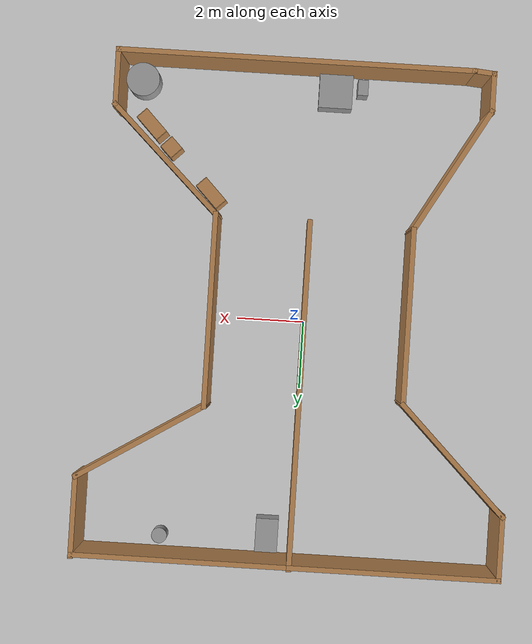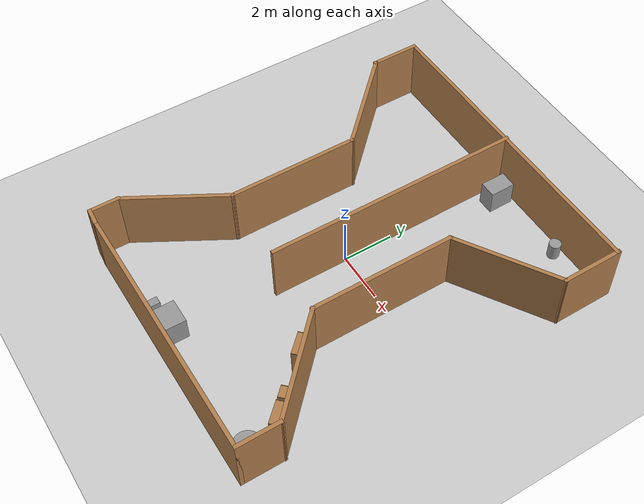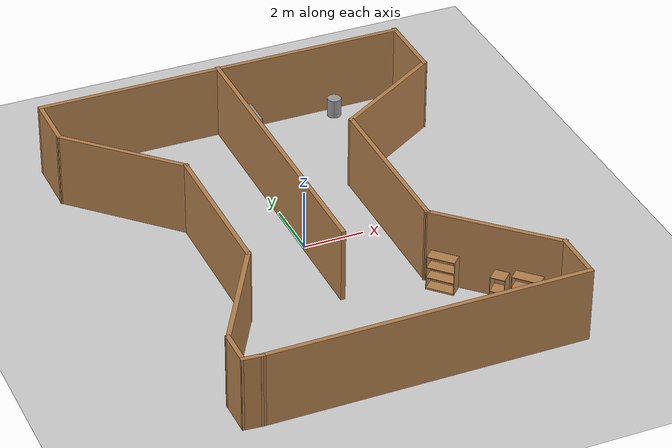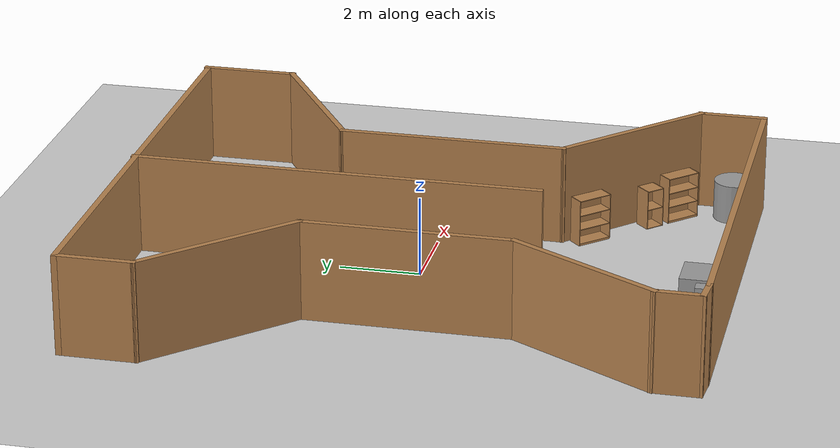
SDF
<sdf version="1.7">
 <world name="default">
  <light name="sun" type="directional">
   <pose>0 0 10 0 -0 0</pose>
   <diffuse>0.8 0.8 0.8 1</diffuse>
   <specular>0.2 0.2 0.2 1</specular>
   <attenuation>
    <range>1000</range>
    <constant>0.9</constant>
    <linear>0.01</linear>
    <quadratic>0.001</quadratic>
   </attenuation>
   <direction>-0.5 0.1 -0.9</direction>
   <spot><inner_angle>0</inner_angle><outer_angle>0</outer_angle><falloff>0</falloff></spot>
  </light>
  <model name="ground_plane">
   <static>1</static>
   <link name="link">
    <collision name="collision">
     <geometry><plane><normal>0 0 1</normal><size>100 100</size></plane></geometry>
     <surface><friction><ode><mu>100</mu><mu2>50</mu2></ode></friction></surface>
    </collision>
    <visual name="visual">
     <cast_shadows>0</cast_shadows>
     <geometry><plane><normal>0 0 1</normal><size>100 100</size></plane></geometry>
     <material>
      <script><uri>file://media/materials/scripts/gazebo.material</uri><name>Gazebo/Grey</name></script>
     </material>
    </visual>
   </link>
  </model>
  <gravity>0 0 -9.8</gravity>
  <magnetic_field>6e-06 2.3e-05 -4.2e-05</magnetic_field>
  <atmosphere type="adiabatic"/>
  <physics type="ode">
   <max_step_size>0.001</max_step_size>
   <real_time_factor>1</real_time_factor>
   <real_time_update_rate>1000</real_time_update_rate>
  </physics>
  <scene><ambient>0.4 0.4 0.4 1</ambient><background>0.7 0.7 0.7 1</background><shadows>1</shadows></scene>
  <spherical_coordinates>
   <surface_model>EARTH_WGS84</surface_model>
   <latitude_deg>0</latitude_deg>
   <longitude_deg>0</longitude_deg>
   <elevation>0</elevation>
   <heading_deg>0</heading_deg>
  </spherical_coordinates>
  <model name="corredores_ampulheta2">
   <pose>0.11555 -0.215376 0 0 -0 0</pose>
   <link name="Wall_10">
    <collision name="Wall_10_Collision">
     <geometry><box><size>5.75 0.15 2.5</size></box></geometry>
     <pose>0 0 1.25 0 -0 0</pose>
    </collision>
    <visual name="Wall_10_Visual">
     <pose>0 0 1.25 0 -0 0</pose>
     <geometry><box><size>5.75 0.15 2.5</size></box></geometry>
     <material>
      <script><uri>file://media/materials/scripts/gazebo.material</uri><name>Gazebo/Wood</name></script>
      <ambient>1 1 1 1</ambient>
     </material>
     <meta><layer>0</layer></meta>
    </visual>
    <pose>2.62636 0.019691 0 0 -0 -1.5708</pose>
   </link>
   <link name="Wall_11">
    <collision name="Wall_11_Collision">
     <geometry><box><size>4.46393 0.15 2.5</size></box></geometry>
     <pose>0 0 1.25 0 -0 0</pose>
    </collision>
    <visual name="Wall_11_Visual">
     <pose>0 0 1.25 0 -0 0</pose>
     <geometry><box><size>4.46393 0.15 2.5</size></box></geometry>
     <material>
      <script><uri>file://media/materials/scripts/gazebo.material</uri><name>Gazebo/Wood</name></script>
      <ambient>1 1 1 1</ambient>
     </material>
     <meta><layer>0</layer></meta>
    </visual>
    <pose>4.17636 -4.28031 0 0 -0 -0.769006</pose>
   </link>
   <link name="Wall_13">
    <collision name="Wall_13_Collision">
     <geometry><box><size>1.75 0.15 2.5</size></box></geometry>
     <pose>0 0 1.25 0 -0 0</pose>
    </collision>
    <visual name="Wall_13_Visual">
     <pose>0 0 1.25 0 -0 0</pose>
     <geometry><box><size>1.75 0.15 2.5</size></box></geometry>
     <material>
      <script><uri>file://media/materials/scripts/gazebo.material</uri><name>Gazebo/Wood</name></script>
      <ambient>1 1 1 1</ambient>
     </material>
     <meta><layer>0</layer></meta>
    </visual>
    <pose>5.72636 -6.58031 0 0 -0 -1.5708</pose>
   </link>
   <link name="Wall_14">
    <collision name="Wall_14_Collision">
     <geometry><box><size>10.5 0.15 2.5</size></box></geometry>
     <pose>0 0 1.25 0 -0 0</pose>
    </collision>
    <visual name="Wall_14_Visual">
     <pose>0 0 1.25 0 -0 0</pose>
     <geometry><box><size>10.5 0.15 2.5</size></box></geometry>
     <material>
      <script><uri>file://media/materials/scripts/gazebo.material</uri><name>Gazebo/Wood</name></script>
      <ambient>1 1 1 1</ambient>
     </material>
     <meta><layer>0</layer></meta>
    </visual>
    <pose>0.551358 -7.38031 0 0 -0 3.14159</pose>
   </link>
   <link name="Wall_16">
    <collision name="Wall_16_Collision">
     <geometry><box><size>6.25 0.15 2.5</size></box></geometry>
     <pose>0 0 1.25 0 -0 0</pose>
    </collision>
    <visual name="Wall_16_Visual">
     <pose>0 0 1.25 0 -0 0</pose>
     <geometry><box><size>6.25 0.15 2.5</size></box></geometry>
     <material>
      <script><uri>file://media/materials/scripts/gazebo.material</uri><name>Gazebo/Wood</name></script>
      <ambient>1 1 1 1</ambient>
     </material>
     <meta><layer>0</layer></meta>
    </visual>
    <pose>-3.17364 7.34605 0 0 -0 3.14159</pose>
   </link>
   <link name="Wall_17">
    <collision name="Wall_17_Collision">
     <geometry><box><size>2 0.15 2.5</size></box></geometry>
     <pose>0 0 1.25 0 -0 0</pose>
    </collision>
    <visual name="Wall_17_Visual">
     <pose>0 0 1.25 0 -0 0</pose>
     <geometry><box><size>2 0.15 2.5</size></box></geometry>
     <material>
      <script><uri>file://media/materials/scripts/gazebo.material</uri><name>Gazebo/Wood</name></script>
      <ambient>1 1 1 1</ambient>
     </material>
     <meta><layer>0</layer></meta>
    </visual>
    <pose>-6.22364 6.42105 0 0 -0 -1.5708</pose>
   </link>
   <link name="Wall_18">
    <collision name="Wall_18_Collision">
     <geometry><box><size>4.5 0.15 2.5</size></box></geometry>
     <pose>0 0 1.25 0 -0 0</pose>
    </collision>
    <visual name="Wall_18_Visual">
     <pose>0 0 1.25 0 -0 0</pose>
     <geometry><box><size>4.5 0.15 2.5</size></box></geometry>
     <material>
      <script><uri>file://media/materials/scripts/gazebo.material</uri><name>Gazebo/Wood</name></script>
      <ambient>1 1 1 1</ambient>
     </material>
     <meta><layer>0</layer></meta>
    </visual>
    <pose>-4.68569 3.95809 0 0 -0 -0.785398</pose>
   </link>
   <link name="Wall_19">
    <collision name="Wall_19_Collision">
     <geometry><box><size>5.25 0.15 2.5</size></box></geometry>
     <pose>0 0 1.25 0 -0 0</pose>
    </collision>
    <visual name="Wall_19_Visual">
     <pose>0 0 1.25 0 -0 0</pose>
     <geometry><box><size>5.25 0.15 2.5</size></box></geometry>
     <material>
      <script><uri>file://media/materials/scripts/gazebo.material</uri><name>Gazebo/Wood</name></script>
      <ambient>1 1 1 1</ambient>
     </material>
     <meta><layer>0</layer></meta>
    </visual>
    <pose>-3.14773 -0.129868 0 0 -0 -1.5708</pose>
   </link>
   <link name="Wall_20">
    <collision name="Wall_20_Collision">
     <geometry><box><size>4.25 0.15 2.5</size></box></geometry>
     <pose>0 0 1.25 0 -0 0</pose>
    </collision>
    <visual name="Wall_20_Visual">
     <pose>0 0 1.25 0 -0 0</pose>
     <geometry><box><size>4.25 0.15 2.5</size></box></geometry>
     <material>
      <script><uri>file://media/materials/scripts/gazebo.material</uri><name>Gazebo/Wood</name></script>
      <ambient>1 1 1 1</ambient>
     </material>
     <meta><layer>0</layer></meta>
    </visual>
    <pose>-4.17273 -4.45522 0 0 -0 -2.0944</pose>
   </link>
   <link name="Wall_21">
    <collision name="Wall_21_Collision">
     <geometry><box><size>1.25 0.15 2.5</size></box></geometry>
     <pose>0 0 1.25 0 -0 0</pose>
    </collision>
    <visual name="Wall_21_Visual">
     <pose>0 0 1.25 0 -0 0</pose>
     <geometry><box><size>1.25 0.15 2.5</size></box></geometry>
     <material>
      <script><uri>file://media/materials/scripts/gazebo.material</uri><name>Gazebo/Wood</name></script>
      <ambient>1 1 1 1</ambient>
     </material>
     <meta><layer>0</layer></meta>
    </visual>
    <pose>-5.19773 -6.78057 0 0 -0 -1.5708</pose>
   </link>
   <link name="Wall_22">
    <collision name="Wall_22_Collision">
     <geometry><box><size>0.726236 0.15 2.5</size></box></geometry>
     <pose>0 0 1.25 0 -0 0</pose>
    </collision>
    <visual name="Wall_22_Visual">
     <pose>0 0 1.25 0 -0 0</pose>
     <geometry><box><size>0.726236 0.15 2.5</size></box></geometry>
     <material>
      <script><uri>file://media/materials/scripts/gazebo.material</uri><name>Gazebo/Wood</name></script>
      <ambient>1 1 1 1</ambient>
     </material>
     <meta><layer>0</layer></meta>
    </visual>
    <pose>-4.91068 -7.35544 0 0 -0 -0.086421</pose>
   </link>
   <link name="Wall_6">
    <collision name="Wall_6_Collision">
     <geometry><box><size>10.25 0.15 2.5</size></box></geometry>
     <pose>0 0 1.25 0 -0 0</pose>
    </collision>
    <visual name="Wall_6_Visual">
     <pose>0 0 1.25 0 -0 0</pose>
     <geometry><box><size>10.25 0.15 2.5</size></box></geometry>
     <material>
      <script><uri>file://media/materials/scripts/gazebo.material</uri><name>Gazebo/Wood</name></script>
      <ambient>1 1 1 1</ambient>
     </material>
     <meta><layer>0</layer></meta>
    </visual>
    <pose>-0.123642 2.3365 0 0 -0 1.5708</pose>
   </link>
   <link name="Wall_7">
    <collision name="Wall_7_Collision">
     <geometry><box><size>6.5 0.15 2.5</size></box></geometry>
     <pose>0 0 1.25 0 -0 0</pose>
    </collision>
    <visual name="Wall_7_Visual">
     <pose>0 0 1.25 0 -0 0</pose>
     <geometry><box><size>6.5 0.15 2.5</size></box></geometry>
     <material>
      <script><uri>file://media/materials/scripts/gazebo.material</uri><name>Gazebo/Wood</name></script>
      <ambient>1 1 1 1</ambient>
     </material>
     <meta><layer>0</layer></meta>
    </visual>
    <pose>3.05136 7.34605 0 0 -0 0</pose>
   </link>
   <link name="Wall_8">
    <collision name="Wall_8_Collision">
     <geometry><box><size>2.46681 0.15 2.5</size></box></geometry>
     <pose>0 0 1.25 0 -0 0</pose>
    </collision>
    <visual name="Wall_8_Visual">
     <pose>0 0 1.25 0 -0 0</pose>
     <geometry><box><size>2.46681 0.15 2.5</size></box></geometry>
     <material>
      <script><uri>file://media/materials/scripts/gazebo.material</uri><name>Gazebo/Wood</name></script>
      <ambient>1 1 1 1</ambient>
     </material>
     <meta><layer>0</layer></meta>
    </visual>
    <pose>6.22636 6.2281 0 0 -0 -1.5708</pose>
   </link>
   <link name="Wall_9">
    <collision name="Wall_9_Collision">
     <geometry><box><size>4.39529 0.15 2.5</size></box></geometry>
     <pose>0 0 1.25 0 -0 0</pose>
    </collision>
    <visual name="Wall_9_Visual">
     <pose>0 0 1.25 0 -0 0</pose>
     <geometry><box><size>4.39529 0.15 2.5</size></box></geometry>
     <material>
      <script><uri>file://media/materials/scripts/gazebo.material</uri><name>Gazebo/Wood</name></script>
      <ambient>1 1 1 1</ambient>
     </material>
     <meta><layer>0</layer></meta>
    </visual>
    <pose>4.42636 3.94469 0 0 -0 -2.58299</pose>
   </link>
   <static>1</static>
  </model>
  <model name="bookshelf">
   <static>1</static>
   <link name="link">
    <inertial><mass>1</mass></inertial>
    <collision name="back">
     <pose>0 0.005 0.6 0 -0 0</pose>
     <geometry><box><size>0.9 0.01 1.2</size></box></geometry>
    </collision>
    <visual name="visual1">
     <pose>0 0.005 0.6 0 -0 0</pose>
     <geometry><box><size>0.9 0.01 1.2</size></box></geometry>
     <material>
      <script><uri>file://media/materials/scripts/gazebo.material</uri><name>Gazebo/Wood</name></script>
     </material>
    </visual>
    <collision name="left_side">
     <pose>0.45 -0.195 0.6 0 -0 0</pose>
     <geometry><box><size>0.02 0.4 1.2</size></box></geometry>
    </collision>
    <visual name="visual2">
     <pose>0.45 -0.195 0.6 0 -0 0</pose>
     <geometry><box><size>0.02 0.4 1.2</size></box></geometry>
     <material>
      <script><uri>file://media/materials/scripts/gazebo.material</uri><name>Gazebo/Wood</name></script>
     </material>
    </visual>
    <collision name="right_side">
     <pose>-0.45 -0.195 0.6 0 -0 0</pose>
     <geometry><box><size>0.02 0.4 1.2</size></box></geometry>
    </collision>
    <visual name="visual3">
     <pose>-0.45 -0.195 0.6 0 -0 0</pose>
     <geometry><box><size>0.02 0.4 1.2</size></box></geometry>
     <material>
      <script><uri>file://media/materials/scripts/gazebo.material</uri><name>Gazebo/Wood</name></script>
     </material>
    </visual>
    <collision name="bottom">
     <pose>0 -0.195 0.03 0 -0 0</pose>
     <geometry><box><size>0.88 0.4 0.06</size></box></geometry>
    </collision>
    <visual name="visual4">
     <pose>0 -0.195 0.03 0 -0 0</pose>
     <geometry><box><size>0.88 0.4 0.06</size></box></geometry>
     <material>
      <script><uri>file://media/materials/scripts/gazebo.material</uri><name>Gazebo/Wood</name></script>
     </material>
    </visual>
    <collision name="top">
     <pose>0 -0.195 1.19 0 -0 0</pose>
     <geometry><box><size>0.88 0.4 0.02</size></box></geometry>
    </collision>
    <visual name="visual5">
     <pose>0 -0.195 1.19 0 -0 0</pose>
     <geometry><box><size>0.88 0.4 0.02</size></box></geometry>
     <material>
      <script><uri>file://media/materials/scripts/gazebo.material</uri><name>Gazebo/Wood</name></script>
     </material>
    </visual>
    <collision name="low_shelf">
     <pose>0 -0.195 0.43 0 -0 0</pose>
     <geometry><box><size>0.88 0.4 0.02</size></box></geometry>
    </collision>
    <visual name="visual6">
     <pose>0 -0.195 0.43 0 -0 0</pose>
     <geometry><box><size>0.88 0.4 0.02</size></box></geometry>
     <material>
      <script><uri>file://media/materials/scripts/gazebo.material</uri><name>Gazebo/Wood</name></script>
     </material>
    </visual>
    <collision name="high_shelf">
     <pose>0 -0.195 0.8 0 -0 0</pose>
     <geometry><box><size>0.88 0.4 0.02</size></box></geometry>
    </collision>
    <visual name="visual7">
     <pose>0 -0.195 0.8 0 -0 0</pose>
     <geometry><box><size>0.88 0.4 0.02</size></box></geometry>
     <material>
      <script><uri>file://media/materials/scripts/gazebo.material</uri><name>Gazebo/Wood</name></script>
     </material>
    </visual>
   </link>
   <pose>3.11944 -3.54445 0 0 0 -0.802911</pose>
  </model>
  <model name="cabinet">
   <static>1</static>
   <link name="cabinet_bottom_plate">
    <inertial>
     <pose>0 0 -1 0 -0 0</pose>
     <inertia><ixx>2.05</ixx><ixy>0</ixy><ixz>0</ixz><iyy>2.05</iyy><iyz>0</iyz><izz>2.05</izz></inertia>
     <mass>25</mass>
    </inertial>
    <collision name="cabinet_bottom_plate_geom">
     <pose>0 0 0.01 0 -0 0</pose>
     <geometry><box><size>0.45 0.45 0.02</size></box></geometry>
    </collision>
    <visual name="cabinet_bottom_plate_geom_visual">
     <pose>0 0 0.01 0 -0 0</pose>
     <geometry><box><size>0.45 0.45 0.02</size></box></geometry>
     <material>
      <script><uri>file://media/materials/scripts/gazebo.material</uri><name>Gazebo/Wood</name></script>
     </material>
    </visual>
    <collision name="cabinet_bottom_plate_geom_cabinet_back_plate">
     <pose>0.235 0 0.51 0 -0 0</pose>
     <geometry><box><size>0.02 0.45 1.02</size></box></geometry>
    </collision>
    <visual name="cabinet_bottom_plate_geom_cabinet_back_plate_visual">
     <pose>0.235 0 0.51 0 -0 0</pose>
     <geometry><box><size>0.02 0.45 1.02</size></box></geometry>
     <material>
      <script><uri>file://media/materials/scripts/gazebo.material</uri><name>Gazebo/Wood</name></script>
     </material>
    </visual>
    <collision name="cabinet_bottom_plate_geom_cabinet_left_plate">
     <pose>0 0.235 0.51 0 -0 0</pose>
     <geometry><box><size>0.45 0.02 1.02</size></box></geometry>
    </collision>
    <visual name="cabinet_bottom_plate_geom_cabinet_left_plate_visual">
     <pose>0 0.235 0.51 0 -0 0</pose>
     <geometry><box><size>0.45 0.02 1.02</size></box></geometry>
     <material>
      <script><uri>file://media/materials/scripts/gazebo.material</uri><name>Gazebo/Wood</name></script>
     </material>
    </visual>
    <collision name="cabinet_bottom_plate_geom_cabinet_middle_plate">
     <pose>0 0 0.51 0 -0 0</pose>
     <geometry><box><size>0.45 0.45 0.02</size></box></geometry>
    </collision>
    <visual name="cabinet_bottom_plate_geom_cabinet_middle_plate_visual">
     <pose>0 0 0.51 0 -0 0</pose>
     <geometry><box><size>0.45 0.45 0.02</size></box></geometry>
     <material>
      <script><uri>file://media/materials/scripts/gazebo.material</uri><name>Gazebo/Wood</name></script>
     </material>
    </visual>
    <collision name="cabinet_bottom_plate_geom_cabinet_right_plate">
     <pose>0 -0.235 0.51 0 -0 0</pose>
     <geometry><box><size>0.45 0.02 1.02</size></box></geometry>
    </collision>
    <visual name="cabinet_bottom_plate_geom_cabinet_right_plate_visual">
     <pose>0 -0.235 0.51 0 -0 0</pose>
     <geometry><box><size>0.45 0.02 1.02</size></box></geometry>
     <material>
      <script><uri>file://media/materials/scripts/gazebo.material</uri><name>Gazebo/Wood</name></script>
     </material>
    </visual>
    <collision name="cabinet_bottom_plate_geom_cabinet_top_plate">
     <pose>0 0 1.01 0 -0 0</pose>
     <geometry><box><size>0.45 0.45 0.02</size></box></geometry>
    </collision>
    <visual name="cabinet_bottom_plate_geom_cabinet_top_plate_visual">
     <pose>0 0 1.01 0 -0 0</pose>
     <geometry><box><size>0.45 0.45 0.02</size></box></geometry>
     <material>
      <script><uri>file://media/materials/scripts/gazebo.material</uri><name>Gazebo/Wood</name></script>
     </material>
    </visual>
   </link>
   <pose>4.25229 -4.98717 0 0 -0 0.774691</pose>
  </model>
  <model name="bookshelf_clone">
   <static>1</static>
   <link name="link">
    <inertial><mass>1</mass></inertial>
    <collision name="back">
     <pose>0 0.005 0.6 0 -0 0</pose>
     <geometry><box><size>0.9 0.01 1.2</size></box></geometry>
    </collision>
    <visual name="visual1">
     <pose>0 0.005 0.6 0 -0 0</pose>
     <geometry><box><size>0.9 0.01 1.2</size></box></geometry>
     <material>
      <script><uri>file://media/materials/scripts/gazebo.material</uri><name>Gazebo/Wood</name></script>
     </material>
    </visual>
    <collision name="left_side">
     <pose>0.45 -0.195 0.6 0 -0 0</pose>
     <geometry><box><size>0.02 0.4 1.2</size></box></geometry>
    </collision>
    <visual name="visual2">
     <pose>0.45 -0.195 0.6 0 -0 0</pose>
     <geometry><box><size>0.02 0.4 1.2</size></box></geometry>
     <material>
      <script><uri>file://media/materials/scripts/gazebo.material</uri><name>Gazebo/Wood</name></script>
     </material>
    </visual>
    <collision name="right_side">
     <pose>-0.45 -0.195 0.6 0 -0 0</pose>
     <geometry><box><size>0.02 0.4 1.2</size></box></geometry>
    </collision>
    <visual name="visual3">
     <pose>-0.45 -0.195 0.6 0 -0 0</pose>
     <geometry><box><size>0.02 0.4 1.2</size></box></geometry>
     <material>
      <script><uri>file://media/materials/scripts/gazebo.material</uri><name>Gazebo/Wood</name></script>
     </material>
    </visual>
    <collision name="bottom">
     <pose>0 -0.195 0.03 0 -0 0</pose>
     <geometry><box><size>0.88 0.4 0.06</size></box></geometry>
    </collision>
    <visual name="visual4">
     <pose>0 -0.195 0.03 0 -0 0</pose>
     <geometry><box><size>0.88 0.4 0.06</size></box></geometry>
     <material>
      <script><uri>file://media/materials/scripts/gazebo.material</uri><name>Gazebo/Wood</name></script>
     </material>
    </visual>
    <collision name="top">
     <pose>0 -0.195 1.19 0 -0 0</pose>
     <geometry><box><size>0.88 0.4 0.02</size></box></geometry>
    </collision>
    <visual name="visual5">
     <pose>0 -0.195 1.19 0 -0 0</pose>
     <geometry><box><size>0.88 0.4 0.02</size></box></geometry>
     <material>
      <script><uri>file://media/materials/scripts/gazebo.material</uri><name>Gazebo/Wood</name></script>
     </material>
    </visual>
    <collision name="low_shelf">
     <pose>0 -0.195 0.43 0 -0 0</pose>
     <geometry><box><size>0.88 0.4 0.02</size></box></geometry>
    </collision>
    <visual name="visual6">
     <pose>0 -0.195 0.43 0 -0 0</pose>
     <geometry><box><size>0.88 0.4 0.02</size></box></geometry>
     <material>
      <script><uri>file://media/materials/scripts/gazebo.material</uri><name>Gazebo/Wood</name></script>
     </material>
    </visual>
    <collision name="high_shelf">
     <pose>0 -0.195 0.8 0 -0 0</pose>
     <geometry><box><size>0.88 0.4 0.02</size></box></geometry>
    </collision>
    <visual name="visual7">
     <pose>0 -0.195 0.8 0 -0 0</pose>
     <geometry><box><size>0.88 0.4 0.02</size></box></geometry>
     <material>
      <script><uri>file://media/materials/scripts/gazebo.material</uri><name>Gazebo/Wood</name></script>
     </material>
    </visual>
   </link>
   <pose>5.00703 -5.48724 0 0 0 -0.802911</pose>
  </model>
  <model name="unit_box">
   <pose>-1.3621 -7.1226 0.499999 -3e-06 -4e-06 0.002602</pose>
   <link name="link">
    <inertial>
     <mass>1</mass>
     <inertia>
      <ixx>0.166667</ixx>
      <ixy>0</ixy>
      <ixz>0</ixz>
      <iyy>0.166667</iyy>
      <iyz>0</iyz>
      <izz>0.166667</izz>
     </inertia>
    </inertial>
    <collision name="collision"><geometry><box><size>0.308722 0.46221 1</size></box></geometry></collision>
    <visual name="visual">
     <geometry><box><size>0.308722 0.46221 1</size></box></geometry>
     <material>
      <script><name>Gazebo/Grey</name><uri>file://media/materials/scripts/gazebo.material</uri></script>
     </material>
    </visual>
   </link>
  </model>
  <model name="unit_box_0">
   <pose>-0.553971 -6.95683 0.499995 0 -1e-05 0</pose>
   <link name="link">
    <inertial>
     <mass>1</mass>
     <inertia>
      <ixx>0.166667</ixx>
      <ixy>0</ixy>
      <ixz>0</ixz>
      <iyy>0.166667</iyy>
      <iyz>0</iyz>
      <izz>0.166667</izz>
     </inertia>
    </inertial>
    <collision name="collision"><geometry><box><size>1 1 1</size></box></geometry></collision>
    <visual name="visual">
     <geometry><box><size>1 1 1</size></box></geometry>
     <material>
      <script><name>Gazebo/Grey</name><uri>file://media/materials/scripts/gazebo.material</uri></script>
     </material>
    </visual>
   </link>
  </model>
  <model name="unit_cylinder">
   <pose>5.22348 -6.96986 0.499994 -4e-06 -2e-06 -0</pose>
   <link name="link">
    <inertial>
     <mass>1</mass>
     <inertia><ixx>0.145833</ixx><ixy>0</ixy><ixz>0</ixz><iyy>0.145833</iyy><iyz>0</iyz><izz>0.125</izz></inertia>
    </inertial>
    <collision name="collision">
     <geometry><cylinder><radius>0.5</radius><length>1</length></cylinder></geometry>
    </collision>
    <visual name="visual">
     <geometry><cylinder><radius>0.5</radius><length>1</length></cylinder></geometry>
     <material>
      <script><name>Gazebo/Grey</name><uri>file://media/materials/scripts/gazebo.material</uri></script>
     </material>
    </visual>
   </link>
  </model>
  <model name="unit_box_1">
   <pose>0.704028 6.42718 0.499999 -2e-06 0 0</pose>
   <link name="link">
    <inertial>
     <mass>1</mass>
     <inertia>
      <ixx>0.166667</ixx>
      <ixy>0</ixy>
      <ixz>0</ixz>
      <iyy>0.166667</iyy>
      <iyz>0</iyz>
      <izz>0.166667</izz>
     </inertia>
    </inertial>
    <collision name="collision"><geometry><box><size>0.669584 1 1</size></box></geometry></collision>
    <visual name="visual">
     <geometry><box><size>0.669584 1 1</size></box></geometry>
     <material>
      <script><name>Gazebo/Grey</name><uri>file://media/materials/scripts/gazebo.material</uri></script>
     </material>
    </visual>
   </link>
  </model>
  <model name="unit_cylinder_0">
   <pose>3.93632 6.67133 0.329487 0 -0 0</pose>
   <link name="link">
    <inertial>
     <mass>1</mass>
     <inertia><ixx>0.145833</ixx><ixy>0</ixy><ixz>0</ixz><iyy>0.145833</iyy><iyz>0</iyz><izz>0.125</izz></inertia>
    </inertial>
    <collision name="collision">
     <geometry><cylinder><radius>0.232019</radius><length>0.658976</length></cylinder></geometry>
    </collision>
    <visual name="visual">
     <geometry><cylinder><radius>0.232019</radius><length>0.658976</length></cylinder></geometry>
     <material>
      <script><name>Gazebo/Grey</name><uri>file://media/materials/scripts/gazebo.material</uri></script>
     </material>
    </visual>
   </link>
  </model>
 </world>
</sdf>
